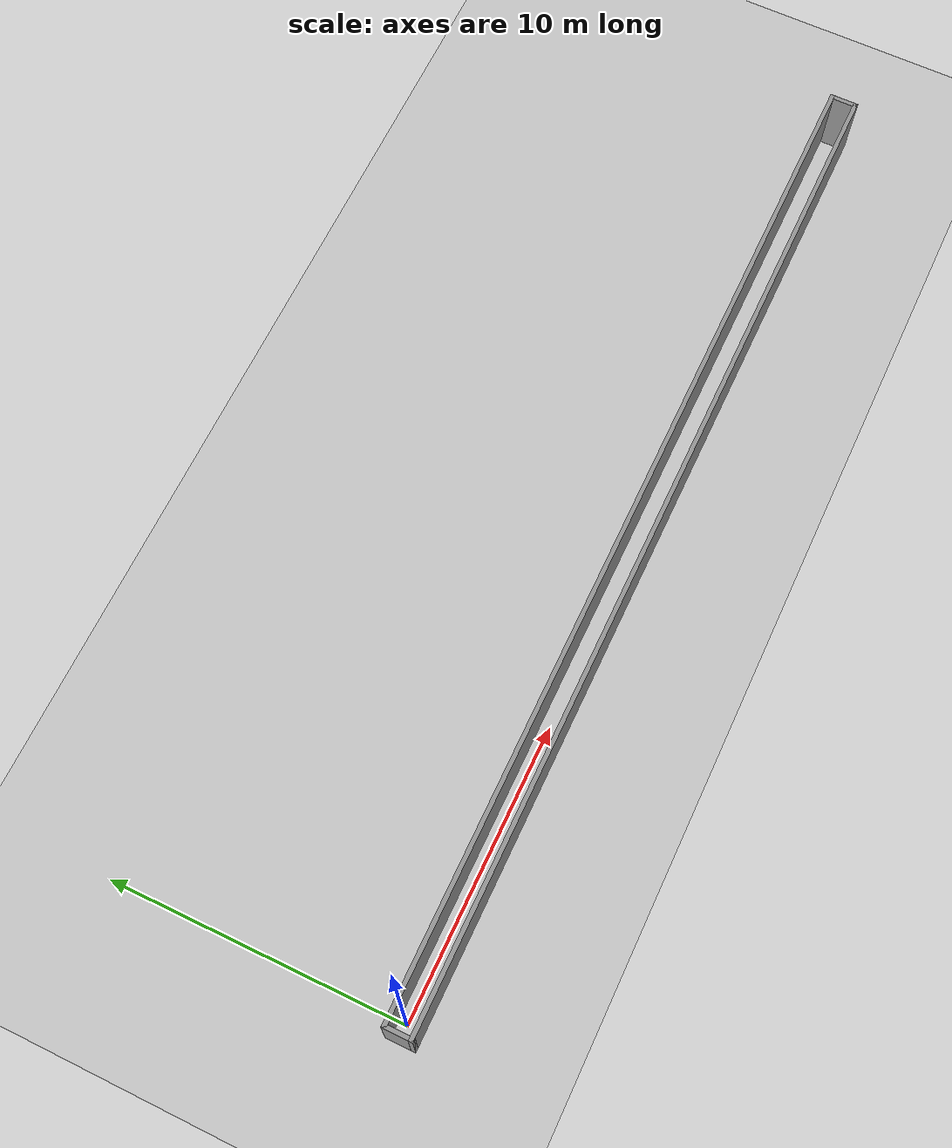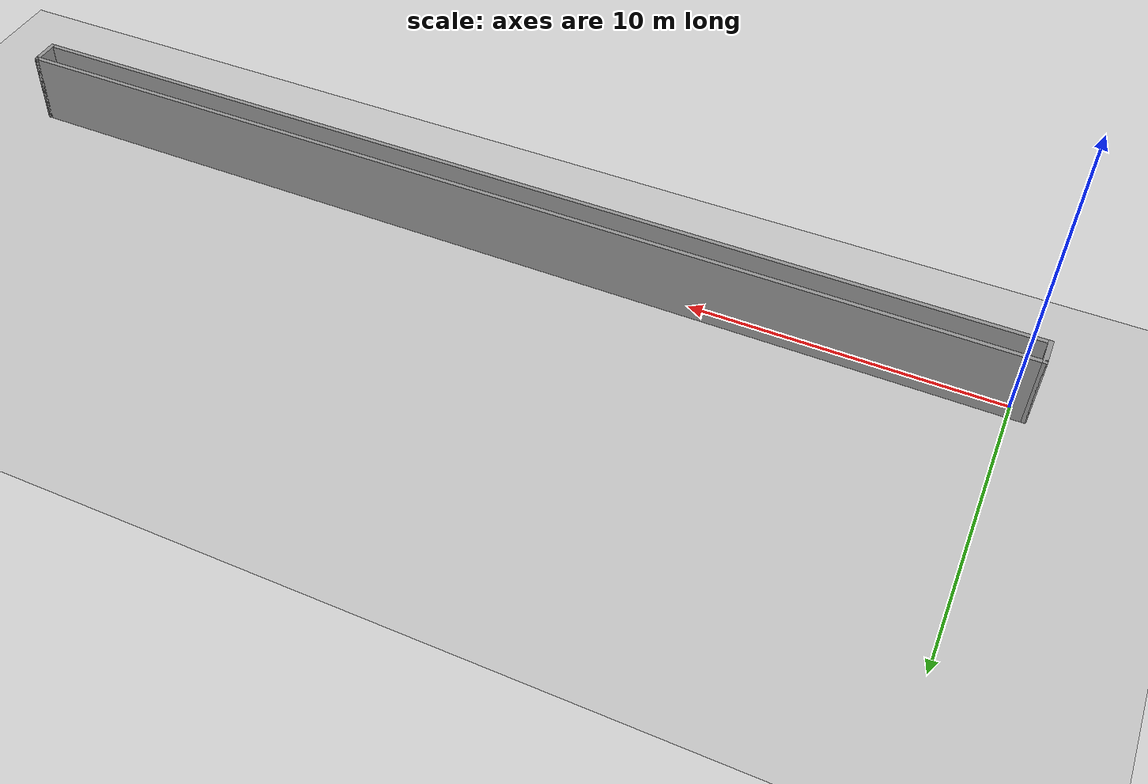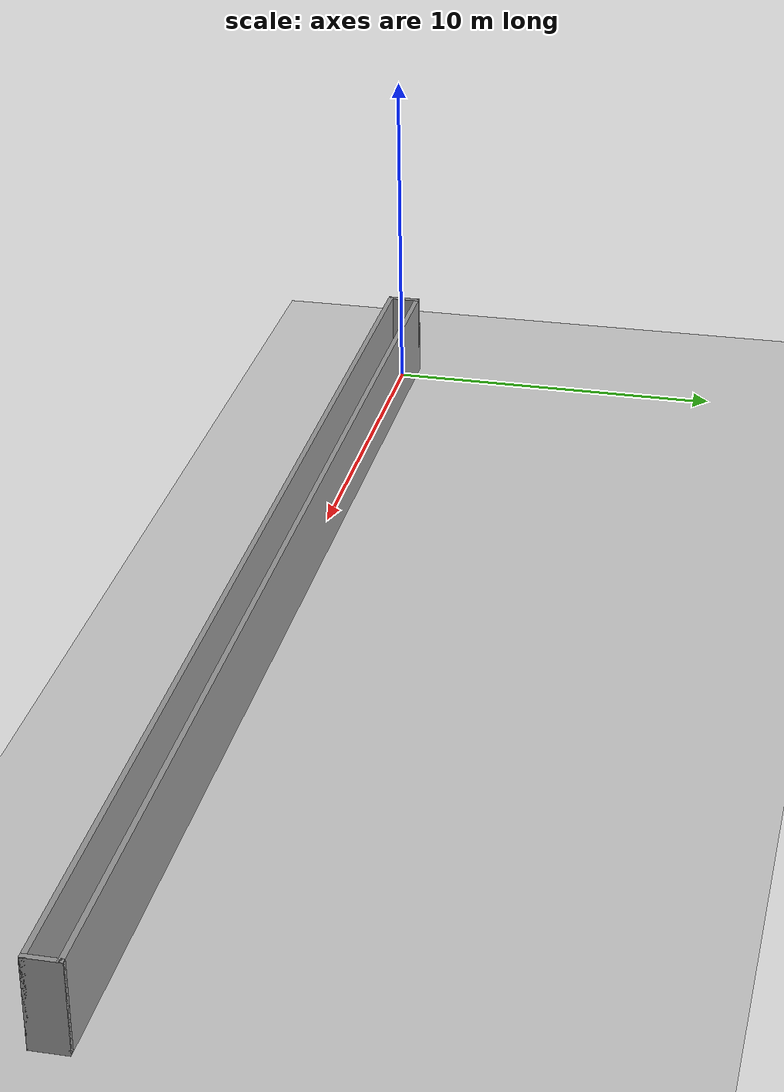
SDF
<sdf version="1.4">
  <world name="default">

    <scene>
      <ambient>0.4 0.4 0.4 1</ambient>
      <background>0.7 0.7 0.7 1</background>
      <shadows>true</shadows>
    </scene>

    <!-- A global light source -->
    <include>
      <uri>model://sun</uri>
    </include>

    <!-- A ground plane -->
    <include>
      <uri>model://ground_plane</uri>
    </include>

    <physics type="ode">
      <real_time_update_rate>1000.0</real_time_update_rate>
      <max_step_size>0.001</max_step_size>
      <real_time_factor>1</real_time_factor>
      <ode>
        <solver>
          <type>quick</type>
          <iters>150</iters>
          <precon_iters>0</precon_iters>
          <sor>1.400000</sor>
          <use_dynamic_moi_rescaling>1</use_dynamic_moi_rescaling>
        </solver>
        <constraints>
          <cfm>0.00001</cfm>
          <erp>0.2</erp>
          <contact_max_correcting_vel>2000.000000</contact_max_correcting_vel>
          <contact_surface_layer>0.01000</contact_surface_layer>
        </constraints>
      </ode>
    </physics>

<model name='35p'>
    <pose frame=''>16.81 -0.045 0 0 -0 0</pose>
    <link name='Wall_1'>
      <collision name='Wall_1_Collision'>
        <geometry>
          <box>
            <size>1 0.15 2.5</size>
          </box>
        </geometry>
        <pose frame=''>0 0 1.25 0 -0 0</pose>
      </collision>
      <visual name='Wall_1_Visual'>
        <pose frame=''>0 0 1.25 0 -0 0</pose>
        <geometry>
          <box>
            <size>1 0.15 2.5</size>
          </box>
        </geometry>
        <material>
          <script>
            <uri>file://media/materials/scripts/gazebo.material</uri>
            <name>Gazebo/Grey</name>
          </script>
          <ambient>1 1 1 1</ambient>
        </material>
        <meta>
          <layer>0</layer>
        </meta>
      </visual>
      <pose frame=''>-17.3 0 0 0 -0 1.5708</pose>
    </link>
    <link name='Wall_12'>
      <collision name='Wall_12_Collision'>
        <geometry>
          <box>
            <size>1 0.15 2.5</size>
          </box>
        </geometry>
        <pose frame=''>0 0 1.25 0 -0 0</pose>
      </collision>
      <visual name='Wall_12_Visual'>
        <pose frame=''>0 0 1.25 0 -0 0</pose>
        <geometry>
          <box>
            <size>1 0.15 2.5</size>
          </box>
        </geometry>
        <material>
          <script>
            <uri>file://media/materials/scripts/gazebo.material</uri>
            <name>Gazebo/Grey</name>
          </script>
          <ambient>1 1 1 1</ambient>
        </material>
        <meta>
          <layer>0</layer>
        </meta>
      </visual>
      <pose frame=''>17.3 0 0 0 -0 -1.5708</pose>
    </link>
    <link name='Wall_3'>
      <collision name='Wall_3_Collision'>
        <geometry>
          <box>
            <size>34.75 0.15 2.5</size>
          </box>
        </geometry>
        <pose frame=''>0 0 1.25 0 -0 0</pose>
      </collision>
      <visual name='Wall_3_Visual'>
        <pose frame=''>0 0 1.25 0 -0 0</pose>
        <geometry>
          <box>
            <size>34.75 0.15 2.5</size>
          </box>
        </geometry>
        <material>
          <script>
            <uri>file://media/materials/scripts/gazebo.material</uri>
            <name>Gazebo/Grey</name>
          </script>
          <ambient>1 1 1 1</ambient>
        </material>
        <meta>
          <layer>0</layer>
        </meta>
      </visual>
      <pose frame=''>-1e-06 0.425 0 0 -0 0</pose>
    </link>
    <link name='Wall_9'>
      <collision name='Wall_9_Collision'>
        <geometry>
          <box>
            <size>34.75 0.15 2.5</size>
          </box>
        </geometry>
        <pose frame=''>0 0 1.25 0 -0 0</pose>
      </collision>
      <visual name='Wall_9_Visual'>
        <pose frame=''>0 0 1.25 0 -0 0</pose>
        <geometry>
          <box>
            <size>34.75 0.15 2.5</size>
          </box>
        </geometry>
        <material>
          <script>
            <uri>file://media/materials/scripts/gazebo.material</uri>
            <name>Gazebo/Grey</name>
          </script>
          <ambient>1 1 1 1</ambient>
        </material>
        <meta>
          <layer>0</layer>
        </meta>
      </visual>
      <pose frame=''>-1e-06 -0.425 0 0 -0 0</pose>
    </link>
    <static>1</static>
  </model>

  </world>

</sdf>
